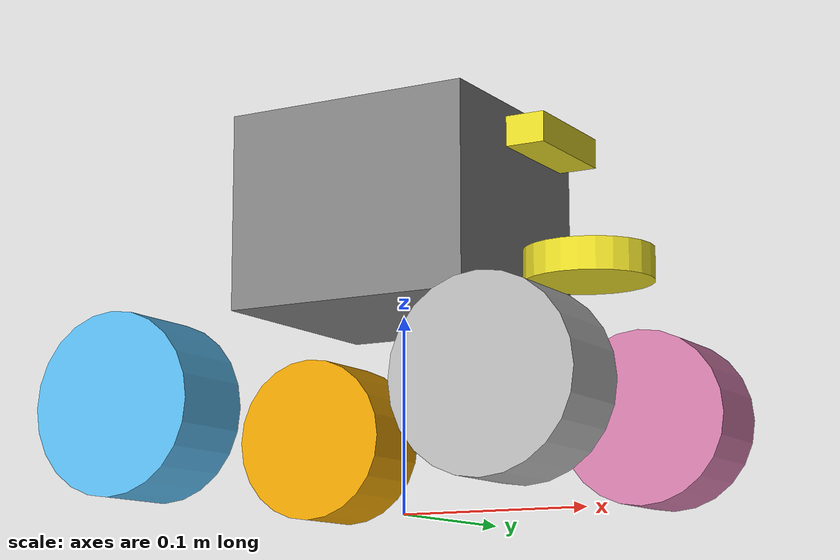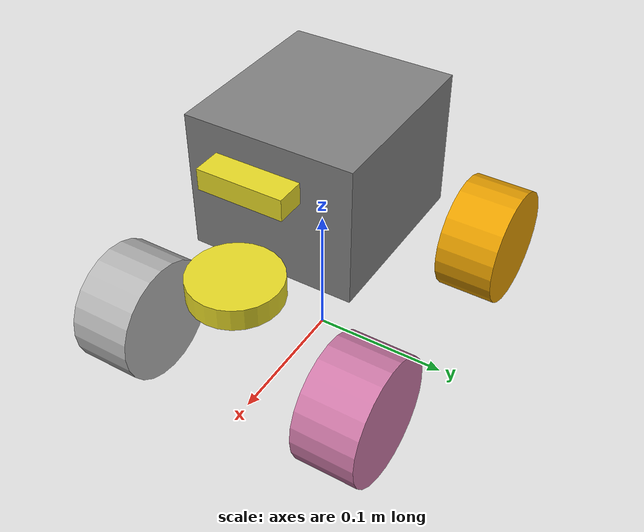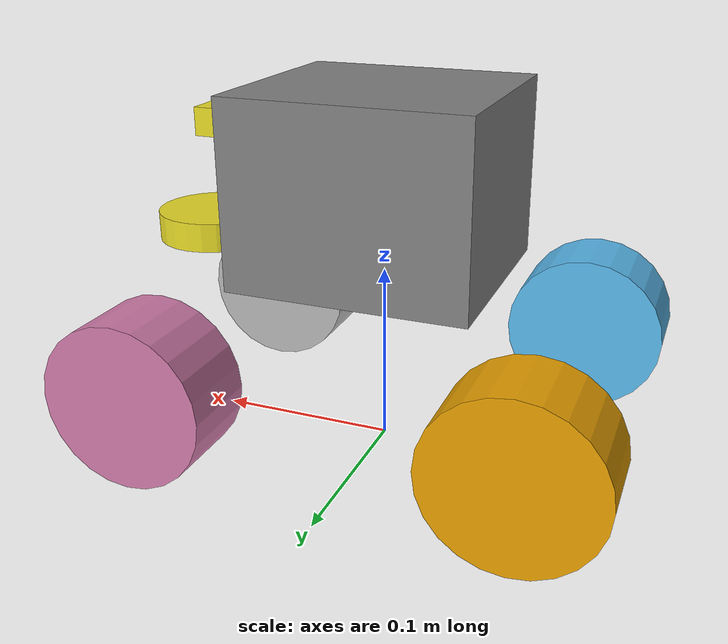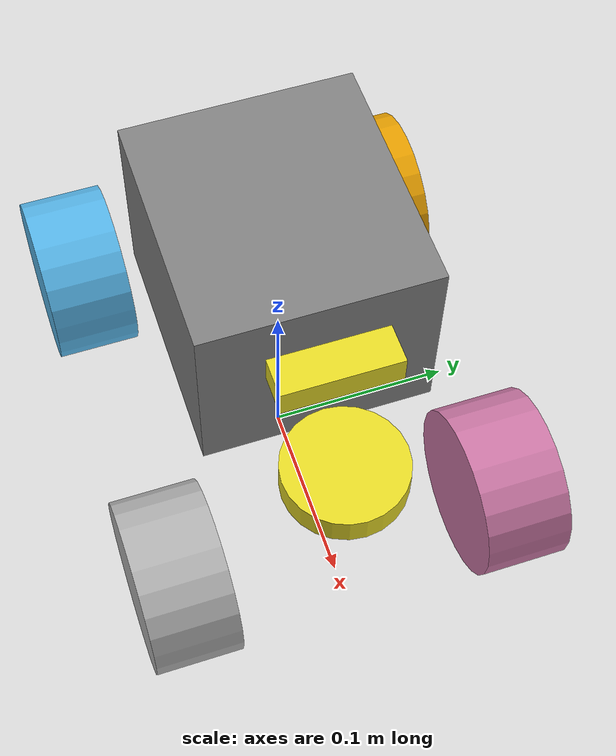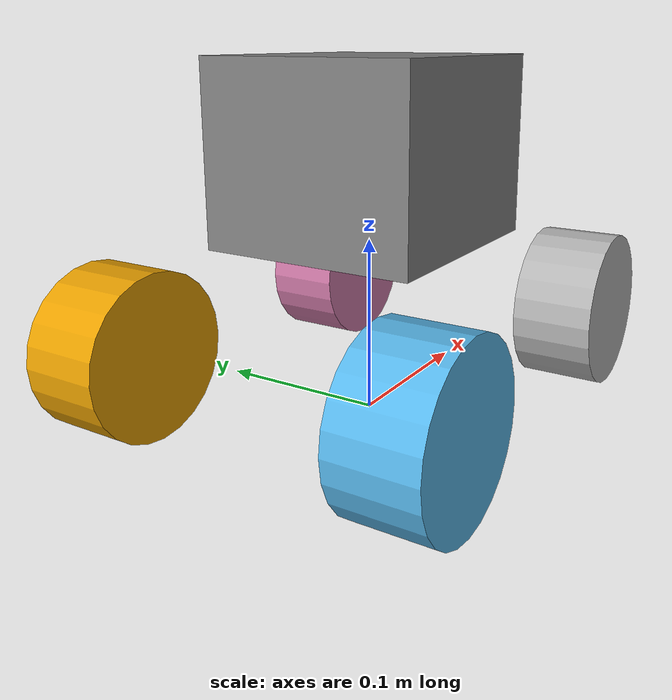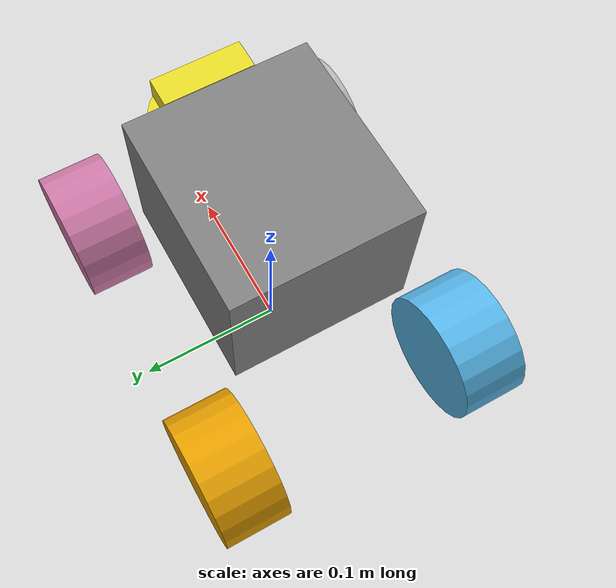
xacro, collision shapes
<?xml version="1.0"?>

<robot name="limo_four_diff" xmlns:xacro="http://ros.org/wiki/xacro">

  <!-- Arguments to support multi-robot instantiation -->
  <xacro:arg name="robot_namespace" default="/" />
  <xacro:arg name="frame_prefix" default="limo" />

  <xacro:include filename="$(find limo_description)/urdf/limo_xacro.xacro" />

  <xacro:property name="frame_prefix" value="$(arg frame_prefix)"/>
  <xacro:property name="robot_namespace" value="$(arg robot_namespace)"/>

  <!-- Variables -->
  <xacro:property name="M_PI" value="3.14159"/>

  <!-- Simplified Vehicle Geometries -->
  <xacro:property name="base_x_size" value="0.13" />
  <xacro:property name="base_y_size" value="0.12" />
  <xacro:property name="base_z_size" value="0.1" />

  <xacro:property name="wheelbase" value="0.2"/>
  <xacro:property name="track" value="0.13"/>
  <xacro:property name="wheel_vertical_offset" value="-0.10" />
  <xacro:property name="base_mass" value="2.1557"/>

  <xacro:property name="wheel_length" value="0.045" />
  <xacro:property name="wheel_radius" value="0.045" />

  <!-- Prefixed links/joints -->
  <link name="${frame_prefix}_base_footprint"/>

  <joint name="${frame_prefix}_base_joint" type="fixed">
    <parent link="${frame_prefix}_base_footprint"/>
    <child link="${frame_prefix}_base_link"/>
    <origin xyz="0.0 0.0 0.15" rpy="0 0 0"/>
  </joint>

  <!-- Simplified Base link - using box geometry instead of mesh -->
  <link name="${frame_prefix}_base_link">
      <visual>
          <origin xyz="0 0 0" rpy="0 0 0" />
          <geometry>
              <box size="${base_x_size} ${base_y_size} ${base_z_size}"/>
          </geometry>
          <material name="grey">
              <color rgba="0.5 0.5 0.5 1.0"/>
          </material>
      </visual>
      <collision>
          <origin xyz="0 0 0" rpy="0 0 0" />
          <geometry>
              <box size="${base_x_size} ${base_y_size} ${base_z_size}"/>
          </geometry>
      </collision>
      <inertial>
          <origin xyz="0.0 0.0 0.0" />
          <mass value="${base_mass}" />
          <inertia ixx="0.24" ixy="0" ixz="0"
                   iyy="0.96" iyz="0"
                   izz="0.96" />
      </inertial>
  </link>

  <!-- Sensors with reduced update rates -->
  <xacro:limo_laser parent_prefix="${frame_prefix}_base_link" frame_prefix="${frame_prefix}_laser">
      <origin xyz="0.103 0 -0.034" rpy="0 0 0"/>
  </xacro:limo_laser>

  <xacro:limo_depth_camera parent_prefix="${frame_prefix}_base_link" frame_prefix="${frame_prefix}_depth_camera">
      <origin xyz="0.084 0 0.03" rpy="0 0 0"/>
  </xacro:limo_depth_camera>

  <xacro:limo_imu parent_prefix="${frame_prefix}_base_link" frame_prefix="${frame_prefix}_imu">
      <origin xyz="0.0 0 -0.1" rpy="0 0 0"/>
  </xacro:limo_imu>

  <!-- Wheels -->
  <xacro:limo_wheel parent_prefix="${frame_prefix}_base_link" wheel_prefix="${frame_prefix}_front_left" reflect="1">
      <origin xyz="${wheelbase/2} ${track/2} ${wheel_vertical_offset}" rpy="0 0  0" />
  </xacro:limo_wheel>

  <xacro:limo_wheel parent_prefix="${frame_prefix}_base_link" wheel_prefix="${frame_prefix}_front_right" reflect="-1">
      <origin xyz="${wheelbase/2} ${-track/2} ${wheel_vertical_offset}" rpy="${M_PI} 0 0" />
  </xacro:limo_wheel>

  <xacro:limo_wheel parent_prefix="${frame_prefix}_base_link" wheel_prefix="${frame_prefix}_rear_left" reflect="1">
      <origin xyz="${-wheelbase/2} ${track/2} ${wheel_vertical_offset}" rpy="0 0 0" />
  </xacro:limo_wheel>

  <xacro:limo_wheel parent_prefix="${frame_prefix}_base_link" wheel_prefix="${frame_prefix}_rear_right" reflect="-1">
      <origin xyz="${-wheelbase/2} ${-track/2} ${wheel_vertical_offset}" rpy="${M_PI} 0 0" />
  </xacro:limo_wheel>

  <!-- Simplified Laser Sensor (reduced samples and update rate) -->
  <gazebo reference="${frame_prefix}_laser_link">
    <sensor type="ray" name="${frame_prefix}_laser_sensor">
      <pose>0 0 0 0 0 0</pose>
      <visualize>false</visualize>
      <update_rate>5</update_rate>
      <ray>
        <scan>
          <horizontal>
            <samples>360</samples>
            <resolution>1</resolution>
            <min_angle>-2.09439504</min_angle>
            <max_angle>2.09439504</max_angle>
          </horizontal>
        </scan>
        <range>
          <min>0.05</min>
          <max>8.0</max>
          <resolution>0.02</resolution>
        </range>
        <noise>
          <type>gaussian</type>
          <mean>0.0</mean>
          <stddev>0.01</stddev>
        </noise>
      </ray>
      <plugin name="${frame_prefix}_laser_plugin" filename="libgazebo_ros_laser.so">
        <topicName>${robot_namespace}/scan</topicName>
        <frameName>${frame_prefix}_laser_link</frameName>
      </plugin>
    </sensor>
  </gazebo>

  <!-- Simplified Depth Camera (lower resolution and update rate) -->
  <gazebo reference="${frame_prefix}_depth_camera_link">
    <sensor name="${frame_prefix}_depth_camera_sensor" type="depth">
      <pose>0.0 0.0 0.0 0.0 0.0 0.0</pose>
      <always_on>true</always_on>
      <visualize>false</visualize>
      <update_rate>5.0</update_rate>
      <camera name="head">
        <horizontal_fov>1.3962634</horizontal_fov>
        <image>
          <width>320</width>
          <height>240</height>
          <format>R8G8B8</format>
        </image>
        <clip>
          <near>0.02</near>
          <far>300</far>
        </clip>
      </camera>
      <plugin name="${frame_prefix}_depth_camera_plugin" filename="libgazebo_ros_openni_kinect.so">
        <baseline>0.2</baseline>
        <alwaysOn>true</alwaysOn>
        <updateRate>5.0</updateRate>
        <cameraName>camera_ir</cameraName>
        <imageTopicName>${robot_namespace}/color/image_raw</imageTopicName>
        <cameraInfoTopicName>${robot_namespace}/color/camera_info</cameraInfoTopicName>
        <depthImageTopicName>${robot_namespace}/depth/image_raw</depthImageTopicName>
        <depthImageCameraInfoTopicName>${robot_namespace}/depth/camera_info</depthImageCameraInfoTopicName>
        <pointCloudTopicName>${robot_namespace}/depth/points</pointCloudTopicName>
        <frameName>${frame_prefix}_depth_camera_link</frameName>
        <pointCloudCutoff>0.5</pointCloudCutoff>
        <pointCloudCutoffMax>3.0</pointCloudCutoffMax>
      </plugin>
    </sensor>
  </gazebo>

  <!-- IMU with reduced update rate -->
  <gazebo reference="${frame_prefix}_imu_link">
    <gravity>true</gravity>
    <sensor name="${frame_prefix}_imu_sensor" type="imu">
      <always_on>true</always_on>
      <update_rate>50</update_rate>
      <visualize>false</visualize>
      <plugin filename="libgazebo_ros_imu_sensor.so" name="${frame_prefix}_imu_plugin">
        <topicName>${robot_namespace}/imu</topicName>
        <bodyName>${frame_prefix}_imu_link</bodyName>
        <updateRateHZ>50.0</updateRateHZ>
        <gaussianNoise>0.001</gaussianNoise>
        <xyzOffset>0 0 0</xyzOffset>
        <rpyOffset>0 0 0</rpyOffset>
        <frameName>${frame_prefix}_imu_link</frameName>
      </plugin>
    </sensor>
  </gazebo>

  <!-- Optimized wheel contact parameters -->
  <gazebo reference="${frame_prefix}_front_left_wheel">
      <mu1>10</mu1>
      <mu2>10</mu2>
      <kp>10000000.0</kp>
      <kd>1.0</kd>
      <minDepth>0.01</minDepth>
      <fdir1>1 0 0</fdir1>
      <maxContacts>10</maxContacts>
  </gazebo>
  <gazebo reference="${frame_prefix}_front_right_wheel">
      <mu1>10</mu1>
      <mu2>10</mu2>
      <kp>10000000.0</kp>
      <kd>1.0</kd>
      <minDepth>0.01</minDepth>
      <fdir1>1 0 0</fdir1>
      <maxContacts>10</maxContacts>
  </gazebo>
  <gazebo reference="${frame_prefix}_rear_left_wheel">
      <mu1>10</mu1>
      <mu2>10</mu2>
      <kp>10000000.0</kp>
      <kd>1.0</kd>
      <minDepth>0.01</minDepth>
      <fdir1>1 0 0</fdir1>
      <maxContacts>10</maxContacts>
  </gazebo>
  <gazebo reference="${frame_prefix}_rear_right_wheel">
      <mu1>10</mu1>
      <mu2>10</mu2>
      <kp>10000000.0</kp>
      <kd>1.0</kd>
      <minDepth>0.01</minDepth>
      <fdir1>1 0 0</fdir1>
      <maxContacts>10</maxContacts>
  </gazebo>

  <!-- Skid-steer drive plugin with optimized update rate -->
  <gazebo>
      <plugin name="four_diff_controller" filename="libgazebo_ros_skid_steer_drive.so">
          <updateRate>50.0</updateRate>
          <robotNamespace>/${robot_namespace}</robotNamespace>
          <leftFrontJoint>${frame_prefix}_front_left_wheel</leftFrontJoint>
          <rightFrontJoint>${frame_prefix}_front_right_wheel</rightFrontJoint>
          <leftRearJoint>${frame_prefix}_rear_left_wheel</leftRearJoint>
          <rightRearJoint>${frame_prefix}_rear_right_wheel</rightRearJoint>
          <wheelSeparation>0.172</wheelSeparation>
          <wheelDiameter>0.09</wheelDiameter>
          <robotBaseFrame>${frame_prefix}_base_footprint</robotBaseFrame>
          <commandTopic>/${robot_namespace}/cmd_vel</commandTopic>
          <torque>50</torque>
          <broadcastTF>true</broadcastTF>
          <odometryTopic>/${robot_namespace}/odom</odometryTopic>
          <odometryFrame>${frame_prefix}_odom</odometryFrame>
          <covariance_x>0.000100</covariance_x>
          <covariance_y>0.000100</covariance_y>
          <covariance_yaw>0.010000</covariance_yaw>
      </plugin>
  </gazebo>

</robot>

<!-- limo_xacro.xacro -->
<robot name="limo_xacro" xmlns:xacro="http://ros.org/wiki/xacro">
    <xacro:macro name="limo_wheel" params="parent_prefix wheel_prefix reflect *joint_pose">
        <link name="${wheel_prefix}_wheel_link">
            <inertial>
                <origin xyz="0 0 0" />
                <mass value="0.5" />
                <inertia ixx="0.01055" ixy="0" ixz="0" iyy="0.00075" iyz="0" izz="0.01055" />
            </inertial>
            <visual>
                <origin xyz="0 0 0" rpy="0 0 0" />
                <geometry>
                    <mesh filename="package://limo_description/meshes/limo_wheel.dae" />
                </geometry>
            </visual>
            <collision>
              <origin xyz="0 ${wheel_length/2} 0" rpy="1.57 0 0" />
              <geometry>
                  <cylinder length="${wheel_length}" radius="${wheel_radius}" />
              </geometry>
            </collision>
        </link>

        <joint name="${wheel_prefix}_wheel" type="continuous">
            <parent link="${parent_prefix}"/>
            <child link="${wheel_prefix}_wheel_link"/>
            <xacro:insert_block name="joint_pose"/>
            <axis xyz="0 ${reflect*1} 0"/>
        </joint>
    </xacro:macro>

    <xacro:macro name="limo_laser" params="parent_prefix frame_prefix *joint_pose">
        <link name='${frame_prefix}_link'>
            <pose>0 0 0 0 0 0</pose>
            <inertial>
                <mass value="0.1"/>
                <origin xyz="0.0 0 0" rpy="0 0 0"/>
                <inertia
                    ixx="1e-6" ixy="0" ixz="0"
                    iyy="1e-6" iyz="0"
                    izz="1e-6"
                />
            </inertial>
            <visual name='laser_visual'>
                <origin xyz="0 0 0" rpy="0 0 0"/>
                <geometry>
                    <cylinder radius="0.02" length="0.01"/>
                </geometry>
                <material name='laser_material'>
                    <ambient>0.1 0.1 0.1 1</ambient>
                    <diffuse>0.1 0.1 0.2 1</diffuse>
                    <specular>0 0 0 0</specular>
                    <emissive>0 0 0 1</emissive>
                </material>
            </visual>
            <collision name='laser_collision'>
                <origin xyz="0 0 0" rpy="0 0 0"/>
                <geometry>
                    <cylinder radius="0.032" length="0.016"/>
                </geometry>
            </collision>
        </link>
        <joint type="fixed" name="laser_joint">
            <xacro:insert_block name="joint_pose"/>
            <child link="${frame_prefix}_link"/>
            <parent link="${parent_prefix}"/>
        </joint>
        <gazebo reference="${frame_prefix}_link">
            <material>Gazebo/Yellow</material>
        </gazebo>
    </xacro:macro>

    <xacro:macro name="limo_depth_camera" params="parent_prefix frame_prefix *joint_pose">
        <link name='${frame_prefix}_link'>
            <pose>0 0 0 0 0 0</pose>
            <inertial>
                <mass value="0.1"/>
                <origin xyz="0.0 0 0" rpy="0 0 0"/>
                <inertia
                    ixx="1e-6" ixy="0" ixz="0"
                    iyy="1e-6" iyz="0"
                    izz="1e-6"
                />
            </inertial>
            <visual name='depth_camera_visual'>
                <origin xyz="0 0 0" rpy="0 0 0"/>
                <geometry>
                    <box size="0.02 0.06 0.015"/>
                </geometry>
                <material name='depth_camera_material'>
                    <ambient>0.1 0.1 0.1 1</ambient>
                    <diffuse>0.1 0.1 0.2 1</diffuse>
                    <specular>0 0 0 0</specular>
                    <emissive>0 0 0 1</emissive>
                </material>
            </visual>
            <collision name='depth_camera_collision'>
                <origin xyz="0 0 0" rpy="0 0 0"/>
                <geometry>
                    <box size="0.02 0.06 0.015"/>
                </geometry>
            </collision>
        </link>

        <joint type="fixed" name="depth_camera_joint">
            <xacro:insert_block name="joint_pose"/>
            <child link="${frame_prefix}_link"/>
            <parent link="${parent_prefix}"/>
        </joint>
        <link name="${frame_prefix}_depth_link"></link>

        <joint name="${frame_prefix}_to_camera_joint" type="fixed">
            <origin xyz="0 0 0" rpy="${-M_PI/2} 0 ${-M_PI/2} "/>
            <parent link="${frame_prefix}_link"/>
            <child link="${frame_prefix}_depth_link"/>
          </joint>

        <gazebo reference="${frame_prefix}_link">
            <material>Gazebo/Yellow</material>
        </gazebo>
    </xacro:macro>

    <xacro:macro name="limo_imu" params="parent_prefix frame_prefix  *joint_pose">
        <link name='${frame_prefix}_link'>
            <pose>0 0 0 0 0 0</pose>
            <inertial>
                <mass value="0.01"/>
                <origin xyz="0.0 0 0" rpy="0 0 0"/>
                <inertia
                    ixx="1e-7" ixy="0" ixz="0"
                    iyy="1e-7" iyz="0"
                    izz="1e-7"
                />
            </inertial>
            <visual name='imu_visual'>
                <origin xyz="0 0 0" rpy="0 0 0"/>
                <geometry>
                    <box size="0.001 0.001 0.001"/>
                </geometry>
                <material name='imu_material'>
                    <ambient>0.1 0.1 0.1 1</ambient>
                    <diffuse>0.1 0.1 0.2 1</diffuse>
                    <specular>0 0 0 0</specular>
                    <emissive>0 0 0 1</emissive>
                </material>
            </visual>
            <collision name='imu_collision'>
                <origin xyz="0 0 0" rpy="0 0 0"/>
                <geometry>
                    <box size="0.001 0.001 0.001"/>
                </geometry>
            </collision>
        </link>
        <joint type="fixed" name="imu_joint">
            <xacro:insert_block name="joint_pose"/>
            <child link="${frame_prefix}_link"/>
            <parent link="${parent_prefix}"/>
        </joint>
        <gazebo reference="${frame_prefix}_link">
            <material>Gazebo/Yellow</material>
        </gazebo>
    </xacro:macro>
</robot>
